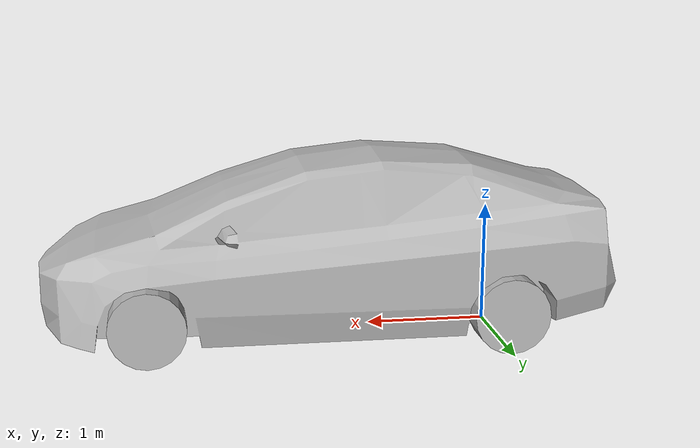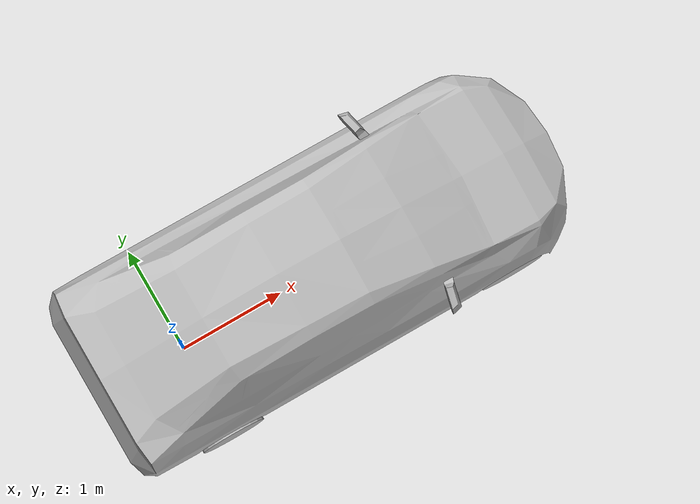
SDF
<sdf version='1.7'>
  <model name='prius'>
    <link name='base_link'>
      <inertial>
        <pose>0 0 0 0 -0 0</pose>
        <mass>1</mass>
        <inertia>
          <ixx>0.001</ixx>
          <ixy>0</ixy>
          <ixz>0</ixz>
          <iyy>0.001</iyy>
          <iyz>0</iyz>
          <izz>0.001</izz>
        </inertia>
      </inertial>
    </link>
    <joint name='base_link_connection' type='revolute'>
      <pose relative_to='base_link'>1.45 0 0 0 -0 1.57</pose>
      <parent>base_link</parent>
      <child>chassis</child>
      <axis>
        <limit>
          <lower>0</lower>
          <upper>0</upper>
        </limit>
        <dynamics>
          <damping>0</damping>
          <friction>0</friction>
          <spring_reference>0</spring_reference>
          <spring_stiffness>0</spring_stiffness>
        </dynamics>
        <xyz>0 0 1</xyz>
      </axis>
      <physics>
        <ode>
          <limit>
            <cfm>0</cfm>
            <erp>0.2</erp>
          </limit>
        </ode>
      </physics>
    </joint>
    <link name='chassis'>
      <pose relative_to='base_link_connection'>0 0 0 0 -0 0</pose>
      <inertial>
        <pose>0 -0.002982 0.485295 0 -0 1.5708</pose>
        <mass>1375</mass>
        <inertia>
          <ixx>2595.52</ixx>
          <ixy>0.000189032</ixy>
          <ixz>-0.949708</ixz>
          <iyy>657.155</iyy>
          <iyz>3.48847e-06</iyz>
          <izz>2749.81</izz>
        </inertia>
      </inertial>
      <collision name='chassis_collision'>
        <pose>0 0.05 0.625 0 -0 0</pose>
        <geometry>
          <box>
            <size>1.7526 2.1 0.95</size>
          </box>
        </geometry>
      </collision>
      <collision name='chassis_fixed_joint_lump__front_bumper_collision_1'>
        <pose>0 -2 0.458488 0 -0 0</pose>
        <geometry>
          <box>
            <size>1.33728 0.48 0.566691</size>
          </box>
        </geometry>
      </collision>
      <collision name='chassis_fixed_joint_lump__hood_collision_2'>
        <pose>0 -1.90084 0.676305 0.341247 -0 0</pose>
        <geometry>
          <box>
            <size>1.59797 0.493107 0.265468</size>
          </box>
        </geometry>
      </collision>
      <collision name='chassis_fixed_joint_lump__windshield_collision_3'>
        <pose>0 -0.875105 1.03227 0.335476 -0 0</pose>
        <geometry>
          <box>
            <size>1.16838 1.65425 0.272347</size>
          </box>
        </geometry>
      </collision>
      <collision name='chassis_fixed_joint_lump__top_front_collision_4'>
        <pose>0 0.161236 1.38604 0.13503 -0 0</pose>
        <geometry>
          <box>
            <size>1.27915 0.625988 0.171868</size>
          </box>
        </geometry>
      </collision>
      <collision name='chassis_fixed_joint_lump__top_rear_collision_5'>
        <pose>0 0.817696 1.36007 -0.068997 0 0</pose>
        <geometry>
          <box>
            <size>1.28513 0.771189 0.226557</size>
          </box>
        </geometry>
      </collision>
      <collision name='chassis_fixed_joint_lump__rear_window_collision_6'>
        <pose>0 1.64053 1.17513 -0.262017 0 0</pose>
        <geometry>
          <box>
            <size>1.26785 1.11634 0.244286</size>
          </box>
        </geometry>
      </collision>
      <collision name='chassis_fixed_joint_lump__trunk_collision_7'>
        <pose>0 1.63706 0.88818 0 -0 0</pose>
        <geometry>
          <box>
            <size>1.78806 1.13899 0.482746</size>
          </box>
        </geometry>
      </collision>
      <collision name='chassis_fixed_joint_lump__back_bumper_collision_8'>
        <pose>0 2.05445 0.57787 0 -0 0</pose>
        <geometry>
          <box>
            <size>1.78165 0.512093 0.581427</size>
          </box>
        </geometry>
      </collision>
      <visual name='chassis_visual'>
        <pose>0 0 0 0 -0 0</pose>
        <geometry>
          <mesh>
            <scale>0.01 0.01 0.01</scale>
            <uri>meshes/hybrid_body.obj</uri>
          </mesh>
        </geometry>
      </visual>
      <!-- 2D GPU LiDAR -->

      <sensor name="front_2d_lidar" type="gpu_lidar">

        <pose>0.0 -2.3 0.8 0 0 -1.57079632679</pose>

        <always_on>true</always_on>

        <update_rate>20</update_rate>

        <visualize>true</visualize>

        <topic>lidar2D/scan</topic>

        <lidar>

          <scan>

            <horizontal>

              <samples>720</samples>

              <resolution>1</resolution>

              <min_angle>-3.14159265</min_angle>

              <max_angle>3.14159265</max_angle>

            </horizontal>

            <vertical>

              <samples>1</samples>

              <resolution>1</resolution>

              <min_angle>0</min_angle>

              <max_angle>0</max_angle>

            </vertical>

          </scan>

          <range>

            <min>0.80</min>

            <max>20.0</max>

            <resolution>0.01</resolution>

          </range>

        </lidar>

      </sensor>

    </link>
    <joint name='front_left_steer_joint' type='revolute'>
      <pose relative_to='chassis'>0.767 -1.41 0.3 0 -0 0</pose>
      <parent>chassis</parent>
      <child>fl_axle</child>
      <axis>
        <xyz>0 0 1</xyz>
        <limit>
          <effort>1e+07</effort>
          <velocity>1e+06</velocity>
          <lower>-1e+16</lower>
          <upper>1e+16</upper>
        </limit>
        <dynamics>
          <spring_reference>0</spring_reference>
          <spring_stiffness>0</spring_stiffness>
        </dynamics>
      </axis>
    </joint>
    <link name='fl_axle'>
      <pose relative_to='front_left_steer_joint'>0 0 0 0 -0 0</pose>
      <inertial>
        <pose>0 0 0 0 -0 0</pose>
        <mass>1</mass>
        <inertia>
          <ixx>0.004</ixx>
          <ixy>0</ixy>
          <ixz>0</ixz>
          <iyy>0.004</iyy>
          <iyz>0</iyz>
          <izz>0.004</izz>
        </inertia>
      </inertial>
    </link>
    <joint name='front_left_wheel_joint' type='revolute'>
      <pose relative_to='fl_axle'>0 0 0 0 -0 0</pose>
      <parent>fl_axle</parent>
      <child>front_left_wheel</child>
      <axis>
        <xyz>1 0 0</xyz>
        <limit>
          <lower>-1e+16</lower>
          <upper>1e+16</upper>
        </limit>
        <dynamics>
          <spring_reference>0</spring_reference>
          <spring_stiffness>0</spring_stiffness>
        </dynamics>
      </axis>
    </joint>
    <link name='front_left_wheel'>
      <pose relative_to='front_left_wheel_joint'>0 0 0 0 -0 0</pose>
      <inertial>
        <pose>0 0 0 0 -0 0</pose>
        <mass>11</mass>
        <inertia>
          <ixx>0.586312</ixx>
          <ixy>0</ixy>
          <ixz>0</ixz>
          <iyy>0.335529</iyy>
          <iyz>0</iyz>
          <izz>0.335529</izz>
        </inertia>
      </inertial>
      <collision name='front_left_wheel_collision_collision'>
        <pose>0 0 0 0 -0 0</pose>
        <geometry>
          <sphere>
            <radius>0.31265</radius>
          </sphere>
        </geometry>
        <surface>
          <contact>
            <ode>
              <kp>1e+08</kp>
              <min_depth>0.005</min_depth>
            </ode>
          </contact>
          <friction>
            <ode>
              <mu>0.9</mu>
              <mu2>0.9</mu2>
            </ode>
          </friction>
        </surface>
      </collision>
      <visual name='front_left_wheel_visual'>
        <pose>0 0 0 0 -0 0</pose>
        <geometry>
          <mesh>
            <scale>0.01 0.01 0.01</scale>
            <uri>meshes/wheel.obj</uri>
          </mesh>
        </geometry>
      </visual>
    </link>
    <joint name='front_right_steer_joint' type='revolute'>
      <pose relative_to='chassis'>-0.767 -1.41 0.3 0 -0 0</pose>
      <parent>chassis</parent>
      <child>fr_axle</child>
      <axis>
        <xyz>0 0 1</xyz>
        <limit>
          <effort>1e+07</effort>
          <velocity>1e+06</velocity>
          <lower>-1e+16</lower>
          <upper>1e+16</upper>
        </limit>
        <dynamics>
          <spring_reference>0</spring_reference>
          <spring_stiffness>0</spring_stiffness>
        </dynamics>
      </axis>
    </joint>
    <link name='fr_axle'>
      <pose relative_to='front_right_steer_joint'>0 0 0 0 -0 0</pose>
      <inertial>
        <pose>0 0 0 0 -0 0</pose>
        <mass>1</mass>
        <inertia>
          <ixx>0.004</ixx>
          <ixy>0</ixy>
          <ixz>0</ixz>
          <iyy>0.004</iyy>
          <iyz>0</iyz>
          <izz>0.004</izz>
        </inertia>
      </inertial>
    </link>
    <joint name='front_right_wheel_joint' type='revolute'>
      <pose relative_to='fr_axle'>0 0 0 0 -0 0</pose>
      <parent>fr_axle</parent>
      <child>front_right_wheel</child>
      <axis>
        <xyz>1 0 0</xyz>
        <limit>
          <lower>-1e+16</lower>
          <upper>1e+16</upper>
        </limit>
        <dynamics>
          <spring_reference>0</spring_reference>
          <spring_stiffness>0</spring_stiffness>
        </dynamics>
      </axis>
    </joint>
    <link name='front_right_wheel'>
      <pose relative_to='front_right_wheel_joint'>0 0 0 0 -0 0</pose>
      <inertial>
        <pose>0 0 0 0 -0 0</pose>
        <mass>11</mass>
        <inertia>
          <ixx>0.586312</ixx>
          <ixy>0</ixy>
          <ixz>0</ixz>
          <iyy>0.335529</iyy>
          <iyz>0</iyz>
          <izz>0.335529</izz>
        </inertia>
      </inertial>
      <collision name='front_right_wheel_collision_collision'>
        <pose>0 0 0 0 -0 0</pose>
        <geometry>
          <sphere>
            <radius>0.31265</radius>
          </sphere>
        </geometry>
        <surface>
          <contact>
            <ode>
              <kp>1e+08</kp>
              <min_depth>0.005</min_depth>
            </ode>
          </contact>
          <friction>
            <ode>
              <mu>0.9</mu>
              <mu2>0.9</mu2>
            </ode>
          </friction>
        </surface>
      </collision>
      <visual name='front_right_wheel_visual'>
        <pose>0 0 0 0 -0 0</pose>
        <geometry>
          <mesh>
            <scale>0.01 0.01 0.01</scale>
            <uri>meshes/wheel.obj</uri>
          </mesh>
        </geometry>
      </visual>
    </link>
    <joint name='rear_left_wheel_joint' type='revolute'>
      <pose relative_to='chassis'>0.793 1.45 0.3 0 -0 0</pose>
      <parent>chassis</parent>
      <child>rear_left_wheel</child>
      <axis>
        <xyz>1 0 0</xyz>
        <limit>
          <lower>-1e+16</lower>
          <upper>1e+16</upper>
        </limit>
        <dynamics>
          <spring_reference>0</spring_reference>
          <spring_stiffness>0</spring_stiffness>
        </dynamics>
      </axis>
    </joint>
    <link name='rear_left_wheel'>
      <pose relative_to='rear_left_wheel_joint'>0 0 0 0 -0 0</pose>
      <inertial>
        <pose>0 0 0 0 -0 0</pose>
        <mass>11</mass>
        <inertia>
          <ixx>0.586312</ixx>
          <ixy>0</ixy>
          <ixz>0</ixz>
          <iyy>0.335529</iyy>
          <iyz>0</iyz>
          <izz>0.335529</izz>
        </inertia>
      </inertial>
      <collision name='rear_left_wheel_collision_collision'>
        <pose>0 0 0 0 -0 0</pose>
        <geometry>
          <sphere>
            <radius>0.31265</radius>
          </sphere>
        </geometry>
        <surface>
          <contact>
            <ode>
              <kp>1e+08</kp>
              <min_depth>0.005</min_depth>
            </ode>
          </contact>
          <friction>
            <ode>
              <mu>0.9</mu>
              <mu2>0.9</mu2>
            </ode>
          </friction>
        </surface>
      </collision>
      <visual name='rear_left_wheel_visual'>
        <pose>0 0 0 0 -0 0</pose>
        <geometry>
          <mesh>
            <scale>0.01 0.01 0.01</scale>
            <uri>meshes/wheel.obj</uri>
          </mesh>
        </geometry>
      </visual>
    </link>
    <joint name='rear_right_wheel_joint' type='revolute'>
      <pose relative_to='chassis'>-0.793 1.45 0.3 0 -0 0</pose>
      <parent>chassis</parent>
      <child>rear_right_wheel</child>
      <axis>
        <xyz>1 0 0</xyz>
        <limit>
          <lower>-1e+16</lower>
          <upper>1e+16</upper>
        </limit>
        <dynamics>
          <spring_reference>0</spring_reference>
          <spring_stiffness>0</spring_stiffness>
        </dynamics>
      </axis>
    </joint>
    <link name='rear_right_wheel'>
      <pose relative_to='rear_right_wheel_joint'>0 0 0 0 -0 0</pose>
      <inertial>
        <pose>0 0 0 0 -0 0</pose>
        <mass>11</mass>
        <inertia>
          <ixx>0.586312</ixx>
          <ixy>0</ixy>
          <ixz>0</ixz>
          <iyy>0.335529</iyy>
          <iyz>0</iyz>
          <izz>0.335529</izz>
        </inertia>
      </inertial>
      <collision name='rear_right_wheel_collision_collision'>
        <pose>0 0 0 0 -0 0</pose>
        <geometry>
          <sphere>
            <radius>0.31265</radius>
          </sphere>
        </geometry>
        <surface>
          <contact>
            <ode>
              <kp>1e+08</kp>
              <min_depth>0.005</min_depth>
            </ode>
          </contact>
          <friction>
            <ode>
              <mu>0.9</mu>
              <mu2>0.9</mu2>
            </ode>
          </friction>
        </surface>
      </collision>
      <visual name='rear_right_wheel_visual'>
        <pose>0 0 0 0 -0 0</pose>
        <geometry>
          <mesh>
            <scale>0.01 0.01 0.01</scale>
            <uri>meshes/wheel.obj</uri>
          </mesh>
        </geometry>
      </visual>
    </link>
    <joint name='steering_joint' type='revolute'>
      <pose relative_to='chassis'>0.357734 -0.627868 0.988243 -1.3021 0 0</pose>
      <parent>chassis</parent>
      <child>steering_wheel</child>
      <axis>
        <xyz>0 0 1</xyz>
        <limit>
          <effort>1e+07</effort>
          <velocity>1e+06</velocity>
          <lower>-1e+16</lower>
          <upper>1e+16</upper>
        </limit>
        <dynamics>
          <spring_reference>0</spring_reference>
          <spring_stiffness>0</spring_stiffness>
        </dynamics>
      </axis>
    </joint>
    <link name='steering_wheel'>
      <pose relative_to='steering_joint'>0 0 0 0 -0 0</pose>
      <inertial>
        <pose>0 0 0 0 -0 0</pose>
        <mass>1</mass>
        <inertia>
          <ixx>0.145833</ixx>
          <ixy>0</ixy>
          <ixz>0</ixz>
          <iyy>0.145833</iyy>
          <iyz>0</iyz>
          <izz>0.125</izz>
        </inertia>
      </inertial>
      <visual name='steering_wheel_visual'>
        <pose>0 0 0 1.3021 -0 0</pose>
        <geometry>
          <mesh>
            <scale>0.01 0.01 0.01</scale>
            <uri>meshes/steering_wheel.obj</uri>
          </mesh>
        </geometry>
      </visual>
    </link>
    <static>0</static>

    <!-- Ackermann controller for Ignition Gazebo -->
    <plugin
      filename="ignition-gazebo-ackermann-steering-system"
      name="ignition::gazebo::systems::AckermannSteering">
      <left_joint>rear_left_wheel_joint</left_joint>
      <right_joint>rear_right_wheel_joint</right_joint>
      <left_steering_joint>front_left_steer_joint</left_steering_joint>
      <right_steering_joint>front_right_steer_joint</right_steering_joint>
      <wheel_separation>1.586</wheel_separation>
      <kingpin_width>1.534</kingpin_width>
      <wheel_base>2.86</wheel_base>
      <wheel_radius>0.31265</wheel_radius>
      <steering_limit>0.6</steering_limit>
      <min_velocity>-20.0</min_velocity>
      <max_velocity>20.0</max_velocity>
      <min_acceleration>-5.0</min_acceleration>
      <max_acceleration>5.0</max_acceleration>
      <topic>/model/prius/cmd_vel</topic>
      <odom_topic>/model/prius/odometry</odom_topic>
      <tf_topic>/model/prius/tf</tf_topic>
      <odom_publish_frequency>50</odom_publish_frequency>
      <frame_id>prius/odom</frame_id>
      <child_frame_id>prius/chassis</child_frame_id>
    </plugin>
  </model>
</sdf>
